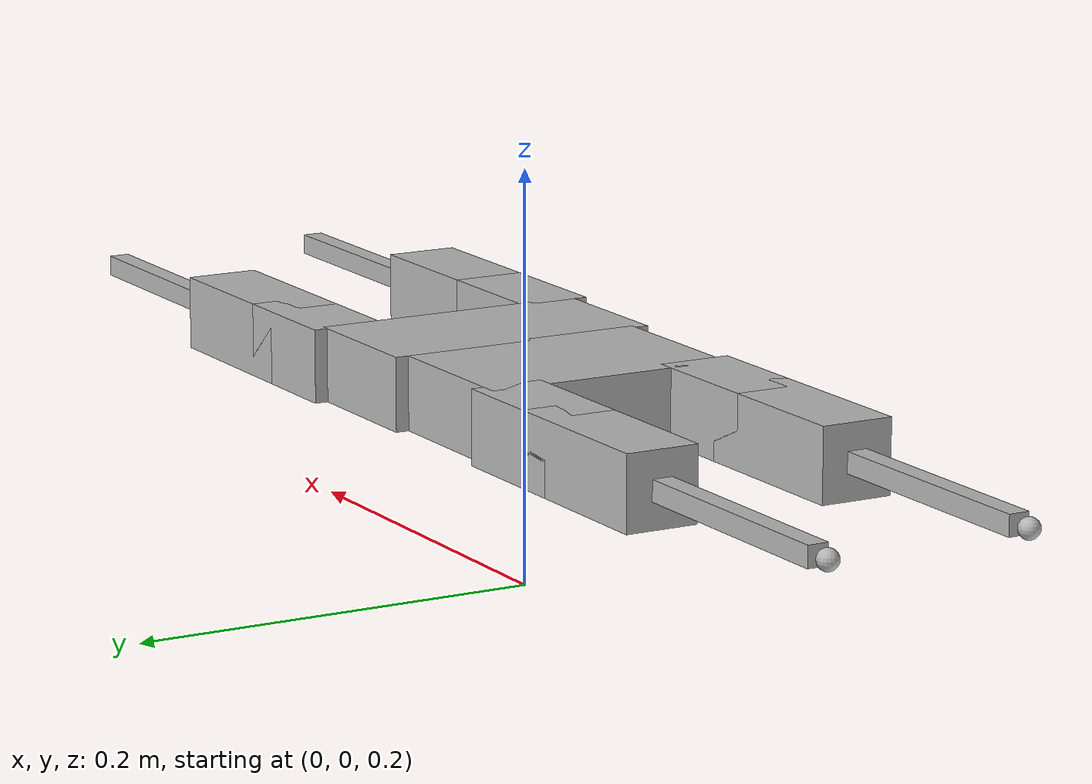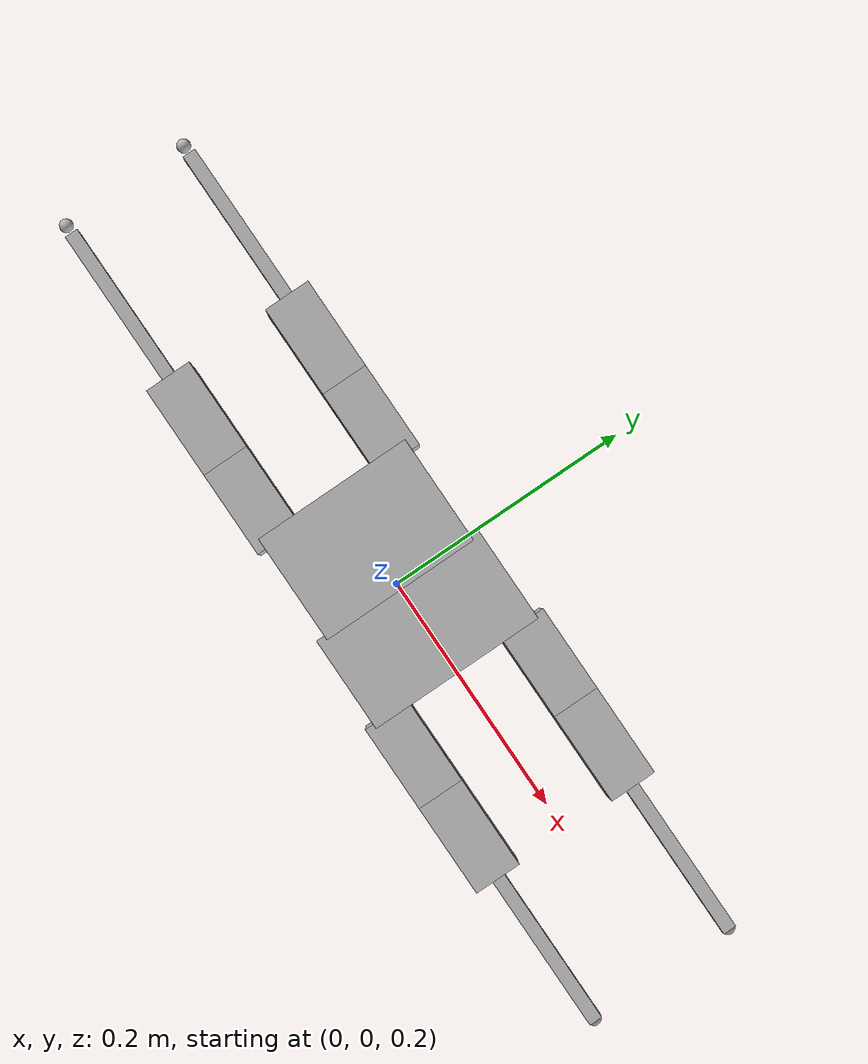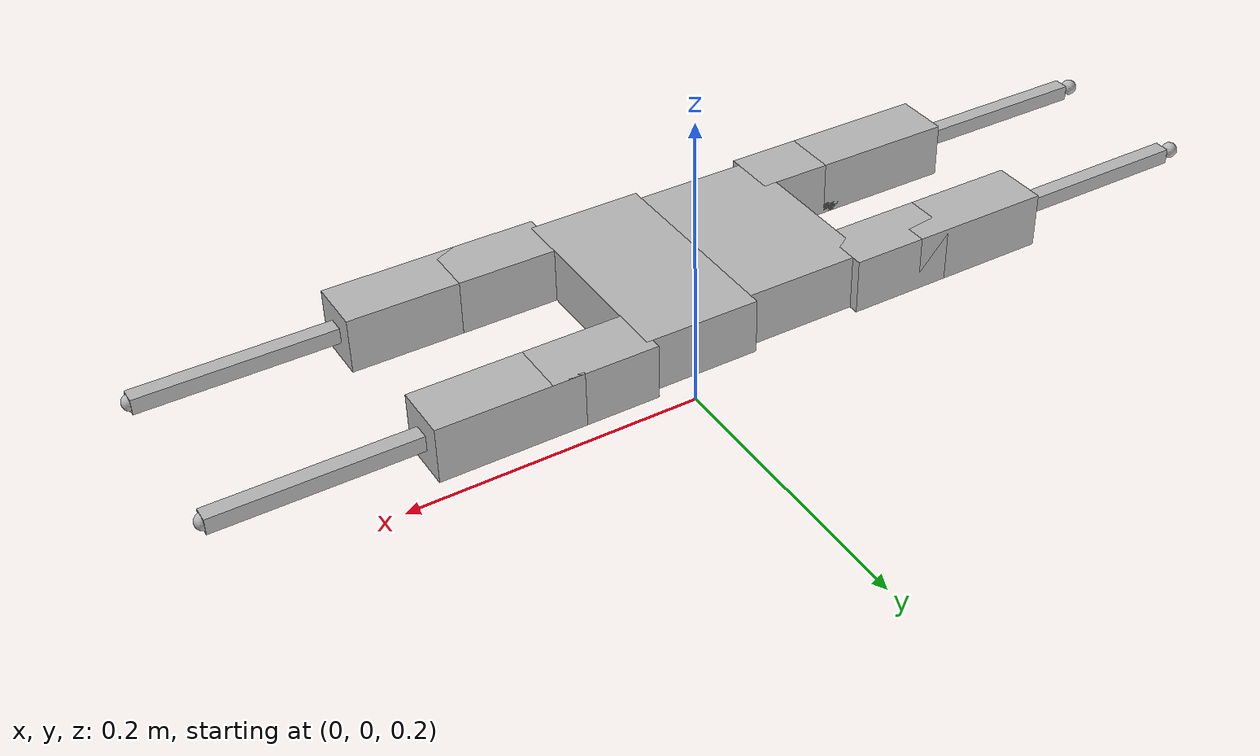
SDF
<!-- This work is licensed under a Creative Commons Attribution 3.0 License. -->
<?xml version='1.0'?>
<sdf version="1.5">
  <world>
  <model name="lynx">
    <static>0</static>
    <pose>0 0 0.3 0 0 0</pose>

    <!-- This is a 30cm tall stand for the lynx model, equating to a fixed base -->
    <link name="/lynx/ABDOMEN">
      <pose>-0.037175 0 0 0 0 0</pose>
      <inertial>
        <pose>0 0 0 0 0 0</pose>
        <mass>0.23801</mass>
        <inertia>
          <ixx>0.000320348766133333</ixx>
          <iyy>0.000165086909466667</iyy>
          <izz>0.000435161616666667</izz>
        </inertia>
      </inertial>

      <collision name="/lynx/ABDOMEN/collision">
        <pose>0 0 0 0 0 0</pose>
        <geometry>
          <box>
            <size>0.0840 0.122 0.0356</size>
          </box>
        </geometry>
      </collision>

      <visual name="/lynx/ABDOMEN/visual">
      <pose>0 0 0 0 0 0</pose>
      <geometry>
        <box>
          <size>0.0840 0.122 0.0356</size>
        </box>
      </geometry>
      </visual>

      <velocity_decay>
        <linear>0</linear>
        <angular>0</angular>
      </velocity_decay>
      <self_collide>0</self_collide>
    </link>

    <!-- to give the robot an articulated spine, increase limits -->
    <joint name="/lynx/BODY_JOINT" type="revolute">
      <parent>/lynx/ABDOMEN</parent>
      <child>/lynx/THORAX</child>
      <pose>0 0 0 0 0 0</pose>
      <axis>
        <limit>
          <lower>0</lower>
          <upper>0</upper>
        </limit>
        <xyz>0 1 0</xyz>
      </axis>
    </joint>

    <link name="/lynx/THORAX">
      <pose>0.037764 0 0 0 0 0</pose>
      <inertial>
        <pose>0 0 0 0 0 0</pose>
        <mass>0.23801</mass>
        <inertia>
          <ixx>0.000332799559733333</ixx>
          <iyy>0.000112621853066667</iyy>
          <izz>0.000402145293333333</izz>
        </inertia>
      </inertial>

      <collision name="/lynx/THORAX/collision">
        <pose>0 0 0 0 0 0</pose>
        <geometry>
          <box>
            <size>0.073 0.135 0.0356</size>
          </box>
        </geometry>
      </collision>

      <visual name="/lynx/THORAX/visual">
        <pose>0 0 0 0 0 0</pose>
        <geometry>
          <box>
            <size>0.073 0.135 0.0356</size>
          </box>
        </geometry>
      </visual>
      <self_collide>0</self_collide>

    </link>

    <!-- LF LEG -->
    <link name="/lynx/LF_HIP">
      <pose>0.103528 0.056278 0 0 0 0</pose>
      <inertial>
        <pose>0 0 0 0 0 0</pose>
        <mass>0.11763</mass>
        <inertia>
          <ixx>2.4776897025e-05</ixx>
          <iyy>9.18235464e-05</iyy>
          <izz>9.1753850625e-05</izz>
        </inertia>
      </inertial>

      <collision name="/lynx/LF_HIP/collision">
        <pose>0 0 0 0 0 0</pose>
        <geometry>
          <box>
            <size>0.09 0.0355 0.0356</size>
          </box>
        </geometry>
      </collision>

      <visual name="/lynx/LF_HIP/visual">
        <pose>0 0 0 0 0 0</pose>
        <geometry>
          <box>
            <size>0.066 0.0355 0.0356</size>
          </box>
        </geometry>
      </visual>
      <self_collide>0</self_collide>

    </link>

    <link name="/lynx/LF_ULEG">
      <pose>0.16185 0.056278 0 0 0 0</pose>
      <inertial>
        <pose>0 0 0 0 0 0</pose>
        <mass>0.13266</mass>
        <inertia>
          <ixx>2.794272855e-05</ixx>
          <iyy>0.0001035561648</iyy>
          <izz>0.00010347756375</izz>
        </inertia>
      </inertial>

      <collision name="/lynx/LF_ULEG/collision">
        <pose>0 0 0 0 0 0</pose>
        <geometry>
          <box>
            <size>0.09 0.0355 0.0356</size>
          </box>
        </geometry>
      </collision>

      <visual name="/lynx/LF_ULEG/visual">
        <pose>0 0 0 0 0 0</pose>
        <geometry>
          <box>
            <size>0.09 0.0355 0.0356</size>
          </box>
        </geometry>
      </visual>
      <self_collide>0</self_collide>

    </link>

    <link name="/lynx/LF_LLEG">
      <pose>0.261962 0.056278 0 0 0 0</pose>
      <inertial>
        <pose>0 0 0 0 0 0</pose>
        <mass>0.04</mass>
        <inertia>
          <ixx>6.66666666666667e-07</ixx>
          <iyy>6.01866666666667e-05</iyy>
          <izz>6.01866666666667e-05</izz>
        </inertia>
      </inertial>

      <collision name="/lynx/LF_LLEG/collision">
        <pose>0 0 0 0 0 0</pose>
        <geometry>
          <box>
            <size>0.134 0.01 0.01</size>
          </box>
        </geometry>
      </collision>

      <visual name="/lynx/LF_LLEG/visual">
        <geometry>
          <box>
            <size>0.134 0.01 0.01</size>
          </box>
        </geometry>
      </visual>
      <self_collide>0</self_collide>

    </link>

    <link name="/lynx/LF_FOOT">
      <pose>0.327962 0.056278 0 0 0 0</pose>
      <inertial>
        <pose>0 0 0 0 0 0</pose>
        <mass>0.01</mass>
        <inertia>
          <ixx>1.66666666666667e-07</ixx>
          <iyy>1.66666666666667e-07</iyy>
          <izz>1.66666666666667e-07</izz>
        </inertia>
      </inertial>

      <collision name="/lynx/LF_FOOT/collision">
        <pose>0 0 0 0 0 0</pose>
        <geometry>
          <sphere>
            <radius>0.005</radius>
          </sphere>
        </geometry>
      </collision>

      <visual name="/lynx/LF_FOOT/visual">
        <pose>0 0 0 0 0 0</pose>
        <geometry>
          <sphere>
            <radius>0.005</radius>
          </sphere>
        </geometry>
      </visual>
      <self_collide>0</self_collide>

    </link>

    <joint name="/lynx/LF_HIP_AA" type="revolute">
      <parent>/lynx/THORAX</parent>
      <child>/lynx/LF_HIP</child>
      <pose>-0.045 0.0 0 0 0 0</pose>
      <axis>
        <xyz>1 0 0</xyz>
        <dynamics>
          <damping>0.0</damping>
        </dynamics>
      </axis>

    </joint>

    <joint name="/lynx/LF_HIP_FE" type="revolute">
      <parent>/lynx/LF_HIP</parent>
      <child>/lynx/LF_ULEG</child>
      <pose>-0.045 0.0 0 0 0 0</pose>
      <axis>
        <xyz>0 1 0</xyz>
        <dynamics>
          <damping>0.0</damping>
        </dynamics>
      </axis>

    </joint>

    <joint name="/lynx/LF_LEG_FE" type="revolute">
      <parent>/lynx/LF_ULEG</parent>
      <child>/lynx/LF_LLEG</child>
      <pose>-0.067 0.0 0 0 0 0</pose>
      <axis>
        <xyz>0 1 0</xyz>
        <dynamics>
          <damping>0.0</damping>
        </dynamics>
      </axis>

    </joint>

    <joint name="/lynx/LF_ANKLE" type="revolute">
      <parent>/lynx/LF_LLEG</parent>
      <child>/lynx/LF_FOOT</child>
      <pose>0.0 0.0 0 0 0 0</pose>
      <axis>
        <limit>
          <lower>0</lower>
          <upper>0</upper>
        </limit>
        <xyz>1 0 0</xyz>
      </axis>

    </joint>

    <!-- RF LEG -->
    <link name="/lynx/RF_HIP">
      <pose>0.103528 -0.056278 0 0 0 0</pose>
      <inertial>
        <pose>0 0 0 0 0 0</pose>
        <mass>0.11763</mass>
        <inertia>
          <ixx>2.4776897025e-05</ixx>
          <iyy>9.18235464e-05</iyy>
          <izz>9.1753850625e-05</izz>
        </inertia>
      </inertial>

      <collision name="/lynx/RF_HIP/collision">
        <pose>0 0 0 0 0 0</pose>
        <geometry>
          <box>
            <size>0.09 0.0355 0.0356</size>
          </box>
        </geometry>
      </collision>

      <visual name="/lynx/RF_HIP/visual">
        <pose>0 0 0 0 0 0</pose>
        <geometry>
          <box>
            <size>0.066 0.0355 0.0356</size>
          </box>
        </geometry>
      </visual>
      <self_collide>0</self_collide>

    </link>

    <link name="/lynx/RF_ULEG">
      <pose>0.16185 -0.056278 0 0 0 0</pose>
      <inertial>
        <pose>0 0 0 0 0 0</pose>
        <mass>0.13266</mass>
        <inertia>
          <ixx>2.794272855e-05</ixx>
          <iyy>0.0001035561648</iyy>
          <izz>0.00010347756375</izz>
        </inertia>
      </inertial>

      <collision name="/lynx/RF_ULEG/collision">
        <pose>0 0 0 0 0 0</pose>
        <geometry>
          <box>
            <size>0.09 0.0355 0.0356</size>
          </box>
        </geometry>
      </collision>

      <visual name="/lynx/RF_ULEG/visual">
        <pose>0 0 0 0 0 0</pose>
        <geometry>
          <box>
            <size>0.09 0.0355 0.0356</size>
          </box>
        </geometry>
      </visual>
      <self_collide>0</self_collide>

    </link>

    <link name="/lynx/RF_LLEG">
      <pose>0.261962 -0.056278 0 0 0 0</pose>
      <inertial>
        <pose>0 0 0 0 0 0</pose>
        <mass>0.04</mass>
        <inertia>
          <ixx>6.66666666666667e-07</ixx>
          <iyy>6.01866666666667e-05</iyy>
          <izz>6.01866666666667e-05</izz>
        </inertia>
      </inertial>

      <collision name="/lynx/RF_LLEG/collision">
        <pose>0 0 0 0 0 0</pose>
        <geometry>
          <box>
            <size>0.134 0.01 0.01</size>
          </box>
        </geometry>
      </collision>

      <visual name="/lynx/RF_LLEG/visual">
        <pose>0 0 0 0 0 0</pose>
        <geometry>
          <box>
            <size>0.134 0.01 0.01</size>
          </box>
        </geometry>
      </visual>
      <self_collide>0</self_collide>

    </link>

    <link name="/lynx/RF_FOOT">
      <pose>0.327962 -0.056278 0 0 0 0</pose>
      <inertial>
        <pose>0 0 0 0 0 0</pose>
        <mass>0.01</mass>
        <inertia>
          <ixx>1.66666666666667e-07</ixx>
          <iyy>1.66666666666667e-07</iyy>
          <izz>1.66666666666667e-07</izz>
        </inertia>
      </inertial>

      <collision name="/lynx/RF_FOOT/collision">
        <pose>0 0 0 0 0 0</pose>
        <geometry>
          <sphere>
            <radius>0.005</radius>
          </sphere>
        </geometry>
      </collision>

      <visual name="/lynx/RF_FOOT/visual">
        <pose>0 0 0 0 0 0</pose>
        <geometry>
          <sphere>
            <radius>0.005</radius>
          </sphere>
        </geometry>
      </visual>
      <self_collide>0</self_collide>

    </link>

    <joint name="/lynx/RF_HIP_AA" type="revolute">
      <parent>/lynx/THORAX</parent>
      <child>/lynx/RF_HIP</child>
      <pose>-0.045 0.0 0 0 0 0</pose>
      <axis>
        <xyz>1 0 0</xyz>
        <dynamics>
          <damping>0.0</damping>
        </dynamics>
      </axis>

    </joint>

    <joint name="/lynx/RF_HIP_FE" type="revolute">
      <parent>/lynx/RF_HIP</parent>
      <child>/lynx/RF_ULEG</child>
      <pose>-0.045 0.0 0 0 0 0</pose>
      <axis>
        <xyz>0 1 0</xyz>
        <dynamics>
          <damping>0.0</damping>
        </dynamics>
      </axis>

    </joint>

    <joint name="/lynx/RF_LEG_FE" type="revolute">
      <parent>/lynx/RF_ULEG</parent>
      <child>/lynx/RF_LLEG</child>
      <pose>-0.067 0.0 0 0 0 0</pose>
      <axis>
        <xyz>0 1 0</xyz>
        <dynamics>
          <damping>0.0</damping>
        </dynamics>
      </axis>

    </joint>

    <joint name="/lynx/RF_ANKLE" type="revolute">
      <parent>/lynx/RF_LLEG</parent>
      <child>/lynx/RF_FOOT</child>
      <pose>0.0 0.0 0 0 0 0</pose>
      <axis>
        <limit>
          <lower>0</lower>
          <upper>0</upper>
        </limit>
        <xyz>1 0 0</xyz>
      </axis>

    </joint>

    <!-- LH LEG -->
    <link name="/lynx/LH_HIP">
      <pose>-0.103528 0.0495 0 0 0 0</pose>
      <inertial>
        <pose>0 0 0 0 0 0</pose>
        <mass>0.14318</mass>
        <inertia>
          <ixx>3.01585999833333e-05</ixx>
          <iyy>6.70960570666667e-05</iyy>
          <izz>6.70112229166667e-05</izz>
        </inertia>
      </inertial>

      <collision name="/lynx/LH_HIP/collision">
        <pose>0 0 0 0 0 0</pose>
        <geometry>
          <box>
            <size>0.066 0.0355 0.0356</size>
          </box>
        </geometry>
      </collision>

      <visual name="/lynx/LH_HIP/visual">
        <pose>0 0 0 0 0 0</pose>
        <geometry>
          <box>
            <size>0.066 0.0355 0.0356</size>
          </box>
        </geometry>
      </visual>
      <self_collide>0</self_collide>
    </link>

    <link name="/lynx/LH_ULEG">
      <pose>-0.16185 0.0495 0 0 0 0</pose>
      <inertial>
        <pose>0 0 0 0 0 0</pose>
        <mass>0.13266</mass>
        <inertia>
          <ixx>2.794272855e-05</ixx>
          <iyy>0.0001035561648</iyy>
          <izz>0.00010347756375</izz>
        </inertia>
      </inertial>

      <collision name="/lynx/LH_ULEG/collision">
        <pose>0 0 0 0 0 0</pose>
        <geometry>
          <box>
            <size>0.09 0.0355 0.0356</size>
          </box>
        </geometry>
      </collision>

      <visual name="/lynx/LH_ULEG/visual">
        <pose>0 0 0 0 0 0</pose>
        <geometry>
          <box>
            <size>0.09 0.0355 0.0356</size>
          </box>
        </geometry>
      </visual>
      <self_collide>0</self_collide>

    </link>

    <link name="/lynx/LH_LLEG">
      <pose>-0.261962 0.0495 0 0 0 0</pose>
      <inertial>
        <pose>0 0 0 0 0 0</pose>
        <mass>0.04</mass>
        <inertia>
          <ixx>6.66666666666667e-07</ixx>
          <iyy>6.01866666666667e-05</iyy>
          <izz>6.01866666666667e-05</izz>
        </inertia>
      </inertial>

      <collision name="/lynx/LH_LLEG/collision">
        <pose>0 0 0 0 0 0</pose>
        <geometry>
          <box>
            <size>0.134 0.01 0.01</size>
          </box>
        </geometry>
      </collision>

      <visual name="/lynx/LH_LLEG/visual">
        <geometry>
          <box>
            <size>0.134 0.01 0.01</size>
          </box>
        </geometry>
      </visual>
      <self_collide>0</self_collide>

    </link>

    <link name="/lynx/LH_FOOT">
      <pose>-0.336316 0.0495 0 0 0 0</pose>
      <inertial>
        <pose>0 0 0 0 0 0</pose>
        <mass>0.01</mass>
        <inertia>
          <ixx>1.66666666666667e-07</ixx>
          <iyy>1.66666666666667e-07</iyy>
          <izz>1.66666666666667e-07</izz>
        </inertia>
      </inertial>

      <collision name="/lynx/LH_FOOT/collision">
        <pose>0 0 0 0 0 0</pose>
        <geometry>
          <sphere>
            <radius>0.005</radius>
          </sphere>
        </geometry>
      </collision>

      <visual name="/lynx/LH_FOOT/visual">
        <pose>0 0 0 0 0 0</pose>
        <geometry>
          <sphere>
            <radius>0.005</radius>
          </sphere>
        </geometry>
      </visual>
      <self_collide>0</self_collide>

    </link>

    <joint name="/lynx/LH_HIP_AA" type="revolute">
      <parent>/lynx/THORAX</parent>
      <child>/lynx/LH_HIP</child>
      <pose>0.045 0.0 0 0 0 0</pose>
      <axis>
        <xyz>-1 0 0</xyz>
        <dynamics>
          <damping>0.0</damping>
        </dynamics>
      </axis>

    </joint>

    <joint name="/lynx/LH_HIP_FE" type="revolute">
      <parent>/lynx/LH_HIP</parent>
      <child>/lynx/LH_ULEG</child>
      <pose>0.045 0.0 0 0 0 0</pose>
      <axis>
        <xyz>0 1 0</xyz>
        <dynamics>
          <damping>0.0</damping>
        </dynamics>
      </axis>

    </joint>

    <joint name="/lynx/LH_LEG_FE" type="revolute">
      <parent>/lynx/LH_ULEG</parent>
      <child>/lynx/LH_LLEG</child>
      <pose>0.067 0.0 0 0 0 0</pose>
      <axis>
        <xyz>0 1 0</xyz>
        <dynamics>
          <damping>0.0</damping>
        </dynamics>
      </axis>

    </joint>

    <joint name="/lynx/LH_ANKLE" type="revolute">
      <parent>/lynx/LH_LLEG</parent>
      <child>/lynx/LH_FOOT</child>
      <pose>0.0 0.0 0 0 0 0</pose>
      <axis>
        <limit>
          <lower>0</lower>
          <upper>0</upper>
        </limit>
        <xyz>1 0 0</xyz>
      </axis>

    </joint>

    <!-- RH LEG -->
    <link name="/lynx/RH_HIP">
      <pose>-0.103528 -0.0495 0 0 0 0</pose>
      <inertial>
        <pose>0 0 0 0 0 0</pose>
        <mass>0.14318</mass>
        <inertia>
          <ixx>3.01585999833333e-05</ixx>
          <iyy>6.70960570666667e-05</iyy>
          <izz>6.70112229166667e-05</izz>
        </inertia>
      </inertial>

      <collision name="/lynx/RH_HIP/collision">
        <pose>0 0 0 0 0 0</pose>
        <geometry>
          <box>
            <size>0.066 0.0355 0.0356</size>
          </box>
        </geometry>
      </collision>

      <visual name="/lynx/RH_HIP/visual">
        <pose>0 0 0 0 0 0</pose>
        <geometry>
          <box>
            <size>0.066 0.0355 0.0356</size>
          </box>
        </geometry>
      </visual>
      <self_collide>0</self_collide>
    </link>

    <link name="/lynx/RH_ULEG">
      <pose>-0.16185 -0.0495 0 0 0 0</pose>
      <inertial>
        <pose>0 0 0 0 0 0</pose>
        <mass>0.13266</mass>
        <inertia>
          <ixx>2.794272855e-05</ixx>
          <iyy>0.0001035561648</iyy>
          <izz>0.00010347756375</izz>
        </inertia>
      </inertial>

      <collision name="/lynx/RH_ULEG/collision">
        <pose>0 0 0 0 0 0</pose>
        <geometry>
          <box>
            <size>0.09 0.0355 0.0356</size>
          </box>
        </geometry>
      </collision>

      <visual name="/lynx/RH_ULEG/visual">
        <pose>0 0 0 0 0 0</pose>
        <geometry>
          <box>
            <size>0.09 0.0355 0.0356</size>
          </box>
        </geometry>
      </visual>
      <self_collide>0</self_collide>
    </link>

    <link name="/lynx/RH_LLEG">
      <pose>-0.261962 -0.0495 0 0 0 0</pose>
      <inertial>
        <pose>0 0 0 0 0 0</pose>
        <mass>0.04</mass>
        <inertia>
          <ixx>6.66666666666667e-07</ixx>
          <iyy>6.01866666666667e-05</iyy>
          <izz>6.01866666666667e-05</izz>
        </inertia>
      </inertial>

      <collision name="/lynx/RH_LLEG/collision">
        <pose>0 0 0 0 0 0</pose>
        <geometry>
          <box>
            <size>0.134 0.01 0.01</size>
          </box>
        </geometry>
      </collision>

      <visual name="/lynx/RH_LLEG/visual">
        <geometry>
          <box>
            <size>0.134 0.01 0.01</size>
          </box>
        </geometry>
      </visual>
      <self_collide>0</self_collide>

    </link>

    <link name="/lynx/RH_FOOT">
      <pose>-0.336316 -0.0495 0 0 0 0</pose>
      <inertial>
        <pose>0 0 0 0 0 0</pose>
        <mass>0.01</mass>
        <inertia>
          <ixx>1.66666666666667e-07</ixx>
          <iyy>1.66666666666667e-07</iyy>
          <izz>1.66666666666667e-07</izz>
        </inertia>
      </inertial>

      <collision name="/lynx/RH_FOOT/collision">
        <pose>0 0 0 0 0 0</pose>
        <geometry>
          <sphere>
            <radius>0.005</radius>
          </sphere>
        </geometry>
      </collision>

      <visual name="/lynx/RH_FOOT/visual">
        <pose>0 0 0 0 0 0</pose>
        <geometry>
          <sphere>
            <radius>0.005</radius>
          </sphere>
        </geometry>
      </visual>
      <self_collide>0</self_collide>
    </link>

    <joint name="/lynx/RH_HIP_AA" type="revolute">
      <parent>/lynx/THORAX</parent>
      <child>/lynx/RH_HIP</child>
      <pose>0.045 0.0 0 0 0 0</pose>
      <axis>
        <xyz>-1 0 0</xyz>
        <dynamics>
          <damping>0.0</damping>
        </dynamics>
      </axis>
    </joint>

    <joint name="/lynx/RH_HIP_FE" type="revolute">
      <parent>/lynx/RH_HIP</parent>
      <child>/lynx/RH_ULEG</child>
      <pose>0.045 0.0 0 0 0 0</pose>
      <axis>
        <xyz>0 -1 0</xyz>
        <dynamics>
          <damping>0.0</damping>
        </dynamics>
      </axis>
    </joint>

    <joint name="/lynx/RH_LEG_FE" type="revolute">
      <parent>/lynx/RH_ULEG</parent>
      <child>/lynx/RH_LLEG</child>
      <pose>0.067 0.0 0 0 0 0</pose>
      <axis>
        <xyz>0 -1 0</xyz>
        <dynamics>
          <damping>0.0</damping>
        </dynamics>
      </axis>
    </joint>

    <joint name="/lynx/RH_ANKLE" type="revolute">
      <parent>/lynx/RH_LLEG</parent>
      <child>/lynx/RH_FOOT</child>
      <pose>0 0 0 0 0 0</pose>
      <axis>
        <limit>
          <lower>0</lower>
          <upper>0</upper>
        </limit>
        <xyz>1 0 0</xyz>
      </axis>
    </joint>

    <plugin name='ros_control' filename='libLINKSgazebo.so'>
      <namespace>/lynx</namespace>
    </plugin>
  </model>
  </world>
</sdf>
